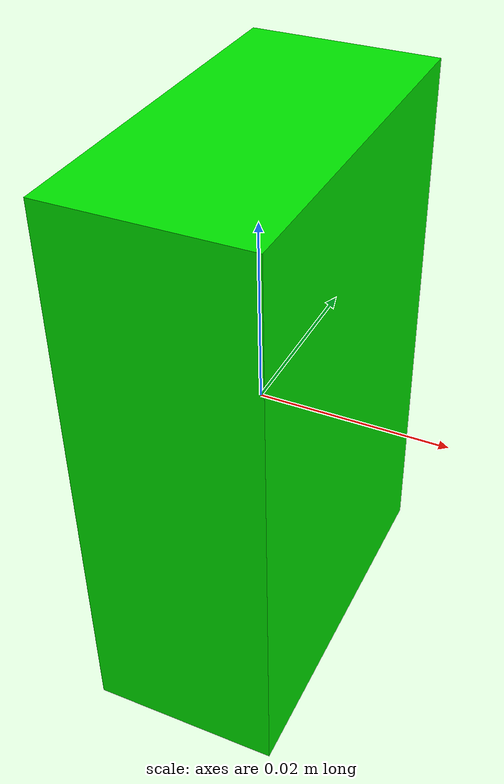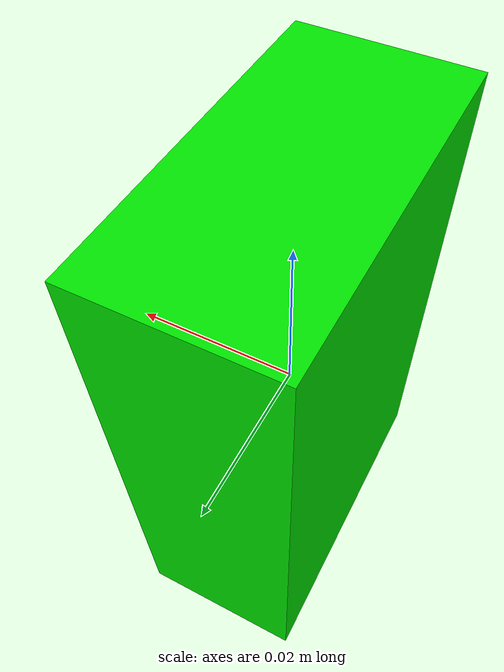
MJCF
<mujoco>
  <worldbody>
    <light diffuse=".5 .5 .5" pos="0 0 3" dir="0 0 -1"/>
    <body pos="0 0 0">
      <body>
        <joint name="ARTx" pos="0 0 0" axis="1 0 0" type="slide" range="-0.5 0.5" damping="1" limited="true" margin="0.01" armature="0.001" frictionloss="0.001"/>
        <body>
          <joint name="ARTy" pos="0 0 0" axis="0 1 0" type="slide" range="-0.5 0.5" damping="1" limited="true" margin="0.01" armature="0.001" frictionloss="0.001"/>
            <body>
            <joint name="ARTz" pos="0 0 0" axis="0 0 1" type="slide" range="-0.5 0.5" damping="1" limited="true" margin="0.01" armature="0.001" frictionloss="0.001"/>
            <body>
              <joint name="ARRx" pos="0 0 0" axis="1 0 0" range="-3.1415 3.1415" damping="0.1" limited="true" margin="0.01" armature="0.001" frictionloss="0.001"/>
              <body>
                <joint name="ARRy" pos="0 0 0" axis="0 1 0" range="-3.1415 3.1415" damping="0.1" limited="true" margin="0.01" armature="0.001" frictionloss="0.001"/>
                <body>
                  <joint name="ARRz" pos="0 0 0" axis="0 0 1" range="-3.1415 3.1415" damping="0.1" limited="true" margin="0.01" armature="0.001" frictionloss="0.001"/>

                  <geom type="box" size=".01 .02 .03" rgba="0 .9 0 1"/>
                </body>
              </body>
            </body>
          </body>
        </body>
      </body>
    </body>
  </worldbody>
</mujoco>
